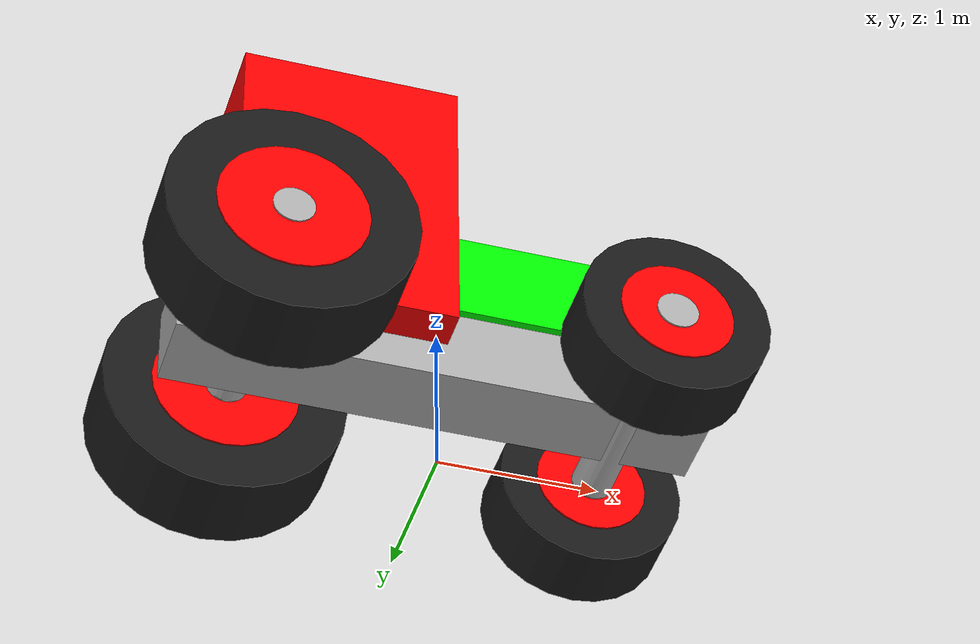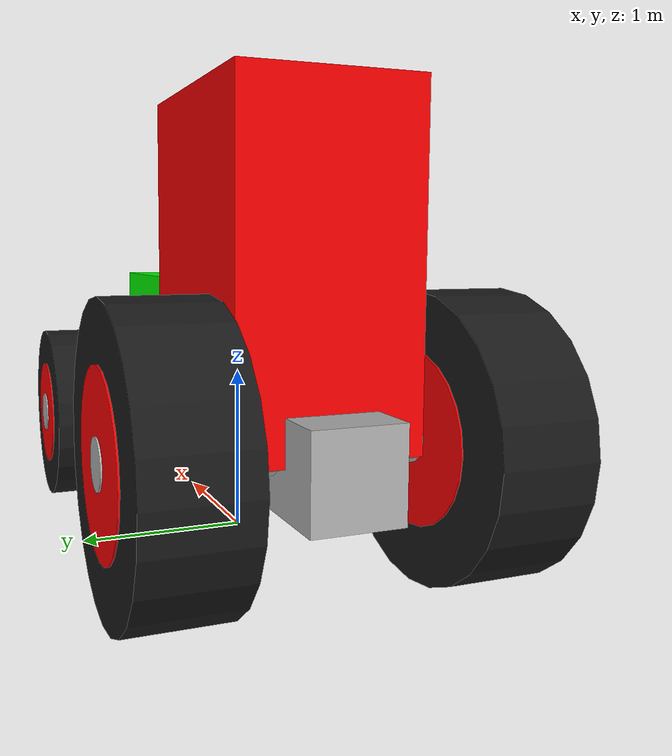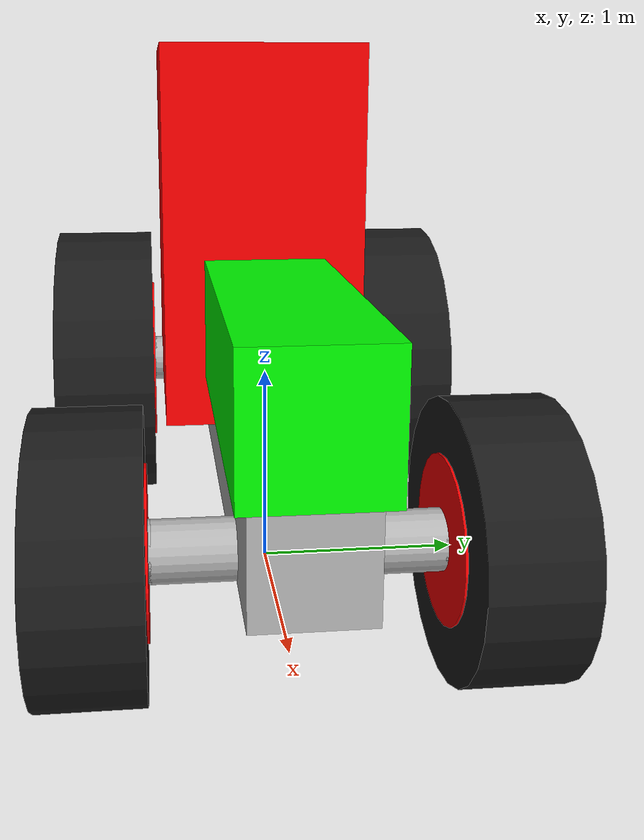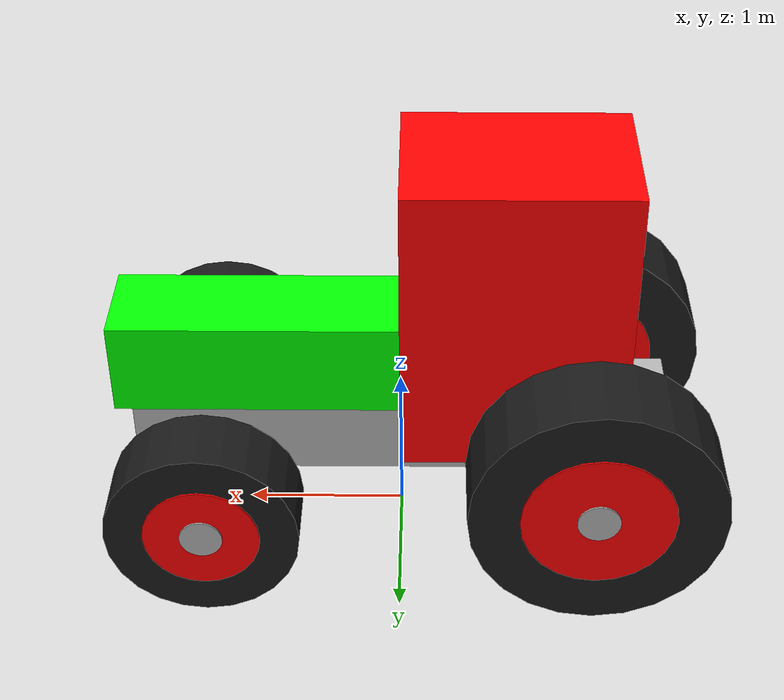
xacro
<?xml version="1.0"?>
<robot name="fendt" xmlns:xacro="http://www.ros.org/wiki/xacro">

    <xacro:include filename="$(find robot_description)/urdf/fendt/common_properties.xacro"/>
    <xacro:include filename="$(find robot_description)/urdf/fendt/wheels.xacro"/>

    <material name="grey"><color rgba="0.7 0.7 0.7 1.0"/></material>
    <material name="black"><color rgba="0.1 0.1 0.1 1.0"/></material>
    <material name="green"><color rgba="0.0 1.0 0.0 1.0"/></material>
    <material name="red"><color rgba="1.0 0.0 0.0 1.0"/></material>

    <!-- ===== Dimensions ===== -->
    <xacro:property name="full_length" value="4.119"/>
    <xacro:property name="full_width" value="2.186"/>
    <xacro:property name="full_height" value="2.620"/>
    <xacro:property name="wheelbase" value="2.370"/>
    <xacro:property name="wheel_track" value="1.660"/>
    <xacro:property name="bottom_clearance" value="0.475"/>
    <xacro:property name="half_wheelbase" value="${wheelbase/2.0}"/>
    <xacro:property name="wheel_y_distance" value="${wheel_track/2.0}"/>

    <xacro:property name="wheel_rad_front" value="0.59"/>
    <xacro:property name="wheel_width_f" value="0.44"/>
    <xacro:property name="front_steer_limit" value="0.6108652382"/>
    <xacro:property name="axle_rad_front" value="0.13"/>
    <xacro:property name="axle_len_front" value="${wheel_track-wheel_width_f}"/>

    <xacro:property name="wheel_rad_rear" value="0.78"/>
    <xacro:property name="wheel_width_r" value="0.54"/>
    <xacro:property name="axle_rad_rear" value="0.13"/>
    <xacro:property name="axle_len_rear" value="${wheel_track-wheel_width_r}"/>

    <xacro:property name="box_len_chassis" value="${wheelbase + 2*wheel_rad_front - 0.20}"/>
    <xacro:property name="box_width_chassis" value="0.50"/>
    <xacro:property name="box_height_chassis" value="0.50"/>

    <xacro:property name="axle_to_front_f_body" value="${wheel_rad_front}"/>
    <xacro:property name="box_len_f_body" value="${axle_to_front_f_body + half_wheelbase}"/>
    <xacro:property name="box_width_f_body" value="0.60"/>
    <xacro:property name="box_height_f_body" value="0.60"/>

    <xacro:property name="axle_to_r_body" value="0.20"/>
    <xacro:property name="box_len_r_body" value="${axle_to_r_body + half_wheelbase}"/>
    <xacro:property name="box_width_r_body" value="${full_width-2*wheel_width_r-0.10}"/>
    <xacro:property name="box_height_r_body" value="${full_height-bottom_clearance - chassis_origin_z}"/>

    <xacro:property name="weight_f_body" value="150"/>
    <xacro:property name="weight_r_body" value="250"/>
    <xacro:property name="weight_chassis" value="3000"/>
    <xacro:property name="wheel_weight_f" value="100"/>
    <xacro:property name="weight_f_axle" value="100"/>
    <xacro:property name="wheel_weight_r" value="150"/>
    <xacro:property name="weight_r_axle" value="150"/>
    <xacro:property name="total_weight" value="${weight_f_body+weight_r_body+weight_chassis+2*(wheel_weight_f + wheel_weight_r)}"/>

    <xacro:property name="base_link_origin_z" value="${bottom_clearance}"/>
    <xacro:property name="chassis_origin_z" value="${box_height_chassis/2.0}"/>

    <xacro:property name="rear_axle_origin_x" value="${-half_wheelbase}"/>
    <xacro:property name="rear_axle_origin_z" value="${wheel_rad_rear - (bottom_clearance+chassis_origin_z)}"/>

    <xacro:property name="front_axle_origin_x" value="${half_wheelbase}"/>
    <xacro:property name="front_axle_origin_z" value="${wheel_rad_front - (bottom_clearance+chassis_origin_z)}"/>

    <xacro:property name="rear_body_origin_x" value="${-box_len_r_body/2.0}"/>
    <xacro:property name="rear_body_origin_z" value="${box_height_r_body/2.0}"/>

    <xacro:property name="front_body_origin_x" value="${box_len_f_body/2.0}"/>
    <xacro:property name="front_body_origin_z" value="${box_height_f_body/2.0 + chassis_origin_z}"/>

    <xacro:property name="laser_origin_z" value="${full_height - bottom_clearance + 0.15}"/>
    <xacro:property name="gnss_origin_z" value="${full_height - bottom_clearance}"/>

    <link name="base_footprint"/>

    <link name="base_link"/>
    <joint name="base_link_joint" type="fixed">
        <parent link="base_footprint"/>
        <child link="base_link"/>
        <origin xyz="0 0 ${base_link_origin_z}" rpy="0 0 0"/>
    </joint>

    <link name="chassis">
        <visual>
            <origin xyz="0 0 0"/>
            <geometry><box size="${box_len_chassis} ${box_width_chassis} ${box_height_chassis}"/></geometry>
            <material name="grey"/>
        </visual>
        <collision>
            <origin xyz="0 0 0"/>
            <geometry><box size="${box_len_chassis} ${box_width_chassis} ${box_height_chassis}"/></geometry>
        </collision>
        <xacro:box_inertia
                m="${weight_chassis}"
                x="${box_len_chassis}"
                y="${box_width_chassis}"
                z="${box_height_chassis}"
                o_xyz="0 0 0"
                o_rpy="0 0 0"/>
    </link>

    <joint name="base_to_chassis_joint" type="fixed">
        <parent link="base_link"/>
        <child link="chassis"/>
        <origin xyz="0 0 ${chassis_origin_z}" rpy="0 0 0"/>
    </joint>

    <joint name="base_to_rear_joint" type="fixed">
        <parent link="chassis"/>
        <child link="rear_body"/>
        <origin xyz="0 0 0" rpy="0 0 0"/>
    </joint>

    <link name="rear_body">
        <visual>
            <origin xyz="${rear_body_origin_x} 0 ${rear_body_origin_z}"/>
            <geometry><box size="${box_len_r_body} ${box_width_r_body} ${box_height_r_body}"/></geometry>
            <material name="red"/>
        </visual>

        <collision>
            <origin xyz="${rear_body_origin_x} 0 ${rear_body_origin_z}"/>
            <geometry><box size="${box_len_r_body} ${box_width_r_body} ${box_height_r_body}"/></geometry>
        </collision>

        <xacro:box_inertia
                m="${weight_r_body}"
                x="${box_len_r_body}"
                y="${box_width_r_body}"
                z="${box_height_r_body}"
                o_xyz="${rear_body_origin_x} 0 ${rear_body_origin_z}"
                o_rpy="0 0 0"/>
    </link>

    <link name="front_body">
        <visual>
            <origin xyz="${front_body_origin_x} 0 ${front_body_origin_z}"/>
            <geometry><box size="${box_len_f_body} ${box_width_f_body} ${box_height_f_body}"/></geometry>
            <material name="green"/>
        </visual>

        <collision>
            <origin xyz="${front_body_origin_x} 0 ${front_body_origin_z}"/>
            <geometry><box size="${box_len_f_body} ${box_width_f_body} ${box_height_f_body}"/></geometry>
        </collision>

        <xacro:box_inertia
                m="${weight_f_body}"
                x="${box_len_f_body}"
                y="${box_width_f_body}"
                z="${box_height_f_body}"
                o_xyz="${front_body_origin_x} 0 ${front_body_origin_z}"
                o_rpy="0 0 0"/>
    </link>

    <joint name="base_to_front_joint" type="fixed">
        <parent link="chassis"/>
        <child link="front_body"/>
        <origin xyz="0 0 0" rpy="0 0 0"/>
    </joint>

    <link name="rear_axle">
        <visual>
            <origin xyz="0 0 0" rpy="1.57079632679 0 0"/>
            <geometry><cylinder radius="${axle_rad_rear}" length="${axle_len_rear}"/></geometry>
            <material name="grey"/>
        </visual>
        <collision>
            <origin xyz="0 0 0" rpy="1.57079632679 0 0"/>
            <geometry><cylinder radius="${axle_rad_rear}" length="${axle_len_rear}"/></geometry>
        </collision>
        <xacro:cylinder_inertia
                m="${weight_r_axle}"
                r="${axle_rad_rear}"
                l="${axle_len_rear}"
                o_xyz="0 0 0"
                o_rpy="0 0 0"/>
    </link>

    <joint name="rear_axle_joint" type="fixed">
        <parent link="chassis"/>
        <child link="rear_axle"/>
        <origin xyz="${rear_axle_origin_x} 0 ${rear_axle_origin_z}" rpy="0 0 0"/>
    </joint>

    <link name="front_axle">
        <visual>
            <origin xyz="0 0 0" rpy="1.57079632679 0 0"/>
            <geometry><cylinder radius="${axle_rad_front}" length="${axle_len_front}"/></geometry>
            <material name="grey"/>
        </visual>
        <collision>
            <origin xyz="0 0 0" rpy="1.57079632679 0 0"/>
            <geometry><cylinder radius="${axle_rad_front}" length="${axle_len_front}"/></geometry>
        </collision>
        <xacro:cylinder_inertia
                m="${weight_f_axle}"
                r="${axle_rad_front}"
                l="${axle_len_front}"
                o_xyz="0 0 0"
                o_rpy="0 0 0"/>
    </link>

    <joint name="front_axle_roll_joint" type="fixed">
        <parent link="chassis"/>
        <child link="front_axle"/>
        <origin xyz="${front_axle_origin_x} 0 ${front_axle_origin_z}" rpy="0 0 0"/>
        <axis xyz="1 0 0"/>
        <limit lower="-0.1745329252" upper="0.1745329252" effort="3000.0" velocity="0.5"/>
        <dynamics damping="80.0" friction="8.0"/>
    </joint>

    <!-- ===== Wheels ===== -->
    <xacro:wheel name="rear_left_wheel"  parent="rear_axle"  x="0.0" y="${wheel_y_distance - (wheel_width_r/2.0)}" z="0.0" radius="${wheel_rad_rear}" width="${wheel_width_r}" mass="${wheel_weight_r}" axle_radius="${axle_rad_rear}" pivot_y_offset="${wheel_width_r/2.0}"/>
    <xacro:wheel name="rear_right_wheel" parent="rear_axle"  x="0.0" y="${-wheel_y_distance + (wheel_width_r/2.0)}" z="0.0" radius="${wheel_rad_rear}" width="${wheel_width_r}" mass="${wheel_weight_r}" axle_radius="${axle_rad_rear}" pivot_y_offset="${-wheel_width_r/2.0}"/>

    <xacro:steerable_wheel name="front_left_wheel"  parent="front_axle" x="0.0" y="${wheel_y_distance - (wheel_width_f/2.0)}" z="0.0" radius="${wheel_rad_front}" width="${wheel_width_f}" mass="${wheel_weight_f}" steer_limit="${front_steer_limit}" axle_radius="${axle_rad_front}" pivot_y_offset="${wheel_width_f/2.0}"/>
    <xacro:steerable_wheel name="front_right_wheel" parent="front_axle" x="0.0" y="${-wheel_y_distance + (wheel_width_f/2.0)}" z="0.0" radius="${wheel_rad_front}" width="${wheel_width_f}" mass="${wheel_weight_f}" steer_limit="${front_steer_limit}" axle_radius="${axle_rad_front}" pivot_y_offset="${-wheel_width_f/2.0}"/>

    <!-- ===== Sensors ===== -->
    <link name="laser_frame"/>
    <joint name="laser_joint" type="fixed">
        <parent link="base_link"/>
        <child link="laser_frame"/>
        <origin xyz="0.0 0.0 ${laser_origin_z}" rpy="0 0 0"/>
    </joint>

    <link name="imu_link"/>
    <joint name="imu_joint" type="fixed">
        <parent link="base_link"/>
        <child link="imu_link"/>
        <origin xyz="0 0 0" rpy="0 0 0"/>
    </joint>

    <link name="gnss_link"/>
    <joint name="gnss_joint" type="fixed">
        <parent link="base_link"/>
        <child link="gnss_link"/>
        <origin xyz="0.0 0.0 ${gnss_origin_z}" rpy="0 0 0"/>
    </joint>

</robot>

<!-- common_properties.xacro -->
<robot xmlns:xacro="http://www.ros.org/wiki/xacro">

    <!-- Inertia calculation macros -->

    <xacro:macro name="box_inertia" params="m x y z o_xyz o_rpy">
        <inertial>
            <mass value="${m}" />
            <origin xyz="${o_xyz}" rpy="${o_rpy}" />
            <inertia ixx="${(m/12) * (y*y + z*z)}" ixy="0" ixz="0"
                     iyy="${(m/12) * (x*x + z*z)}" iyz="0"
                     izz="${(m/12) * (x*x + y*y)}" />
        </inertial>
    </xacro:macro>

    <xacro:macro name="cylinder_inertia" params="m r l o_xyz o_rpy">
        <inertial>
            <mass value="${m}" />
            <origin xyz="${o_xyz}" rpy="${o_rpy}" />
            <inertia ixx="${(m/12) * (3*r*r + l*l)}" ixy="0" ixz="0"
                     iyy="${(m/12) * (3*r*r + l*l)}" iyz="0"
                     izz="${(m/2) * (r*r)}" />
        </inertial>
    </xacro:macro>

    <xacro:macro name="sphere_inertia" params="m r o_xyz o_rpy">
        <inertial>
            <mass value="${m}" />
            <origin xyz="${o_xyz}" rpy="${o_rpy}" />
            <inertia ixx="${(2/5) * m * r * r}" ixy="0" ixz="0"
                     iyy="${(2/5) * m * r * r}" iyz="0"
                     izz="${(2/5) * m * r * r}" />
        </inertial>
    </xacro:macro>

</robot>

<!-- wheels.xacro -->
<robot xmlns:xacro="http://www.ros.org/wiki/xacro">

  <!-- ===== Rear Wheel Macro (axle -> knuckle -> hub -> tire) ===== -->
  <xacro:macro name="wheel" params="name parent x y z radius width mass:=50.0 axle_radius:=0.13 pivot_y_offset:=0.0">
    <xacro:property name="knuckle_length" value="${width + 0.04}"/>
    <xacro:property name="hub_radius" value="${0.6 * radius}"/>
    <xacro:property name="hub_length" value="${width + 0.02}"/>

    <link name="${name}_knuckle">
      <visual>
        <origin xyz="0 ${pivot_y_offset} 0" rpy="1.57079632679 0 0"/>
        <geometry>
          <cylinder radius="${axle_radius}" length="${knuckle_length}"/>
        </geometry>
        <material name="grey"/>
      </visual>
      <collision>
        <origin xyz="0 ${pivot_y_offset} 0" rpy="1.57079632679 0 0"/>
        <geometry>
          <cylinder radius="${axle_radius}" length="${knuckle_length}"/>
        </geometry>
      </collision>
      <xacro:cylinder_inertia m="${0.1 * mass}"
                              r="${axle_radius}"
                              l="${knuckle_length}"
                              o_xyz="0 ${pivot_y_offset} 0"
                              o_rpy="0 0 0"/>
    </link>

    <joint name="${name}_knuckle_joint" type="fixed">
      <parent link="${parent}"/>
      <child link="${name}_knuckle"/>
      <origin xyz="${x} ${y} ${z}" rpy="0 0 0"/>
    </joint>

    <link name="${name}_hub">
      <visual>
        <origin xyz="0 0 0" rpy="1.57079632679 0 0"/>
        <geometry>
          <cylinder radius="${hub_radius}" length="${hub_length}"/>
        </geometry>
        <material name="red"/>
      </visual>
      <collision>
        <origin xyz="0 0 0" rpy="1.57079632679 0 0"/>
        <geometry>
          <cylinder radius="${hub_radius}" length="${hub_length}"/>
        </geometry>
      </collision>
      <xacro:cylinder_inertia m="${0.2 * mass}"
                              r="${hub_radius}"
                              l="${hub_length}"
                              o_xyz="0 0 0"
                              o_rpy="0 0 0"/>
    </link>

    <joint name="${name}_joint" type="continuous">
      <parent link="${name}_knuckle"/>
      <child link="${name}_hub"/>
      <origin xyz="0 ${pivot_y_offset} 0" rpy="0 0 0"/>
      <axis xyz="0 1 0"/>
      <dynamics damping="3.0" friction="0.4"/>
    </joint>

    <link name="${name}">
      <visual>
        <origin xyz="0 0 0" rpy="1.57079632679 0 0"/>
        <geometry>
          <cylinder radius="${radius}" length="${width}"/>
        </geometry>
        <material name="black"/>
      </visual>
      <collision>
        <origin xyz="0 0 0" rpy="1.57079632679 0 0"/>
        <geometry>
          <cylinder radius="${radius}" length="${width}"/>
        </geometry>
      </collision>
      <xacro:cylinder_inertia m="${0.7 * mass}"
                              r="${radius}"
                              l="${width}"
                              o_xyz="0 0 0"
                              o_rpy="0 0 0"/>
    </link>

    <joint name="${name}_tire_joint" type="fixed">
      <parent link="${name}_hub"/>
      <child link="${name}"/>
      <origin xyz="0 0 0" rpy="0 0 0"/>
    </joint>
  </xacro:macro>

  <xacro:macro name="steerable_wheel" params="name parent x y z radius width mass:=50.0 steer_limit:=0.9599310886 mimic_joint:='' mimic_multiplier:=1.0 axle_radius:=0.13 pivot_y_offset:=0.0">
    <xacro:property name="knuckle_length" value="${width + 0.04}"/>
    <xacro:property name="hub_radius" value="${0.6 * radius}"/>
    <xacro:property name="hub_length" value="${width + 0.02}"/>

    <link name="${name}_knuckle">
      <visual>
        <origin xyz="0 ${pivot_y_offset} 0" rpy="1.57079632679 0 0"/>
        <geometry>
          <cylinder radius="${axle_radius}" length="${knuckle_length}"/>
        </geometry>
        <material name="grey"/>
      </visual>
      <collision>
        <origin xyz="0 ${pivot_y_offset} 0" rpy="1.57079632679 0 0"/>
        <geometry>
          <cylinder radius="${axle_radius}" length="${knuckle_length}"/>
        </geometry>
      </collision>
      <xacro:cylinder_inertia m="${0.1 * mass}"
                              r="${axle_radius}"
                              l="${knuckle_length}"
                              o_xyz="0 ${pivot_y_offset} 0"
                              o_rpy="0 0 0"/>
    </link>

    <joint name="${name}_steer_joint" type="revolute">
      <parent link="${parent}"/>
      <child link="${name}_knuckle"/>
      <origin xyz="${x} ${y} ${z}" rpy="0 0 0"/>
      <axis xyz="0 0 1"/>
      <limit lower="${-steer_limit}" upper="${steer_limit}" effort="2000.0" velocity="1.5"/>
      <xacro:if value="${mimic_joint != ''}">
        <mimic joint="${mimic_joint}" multiplier="${mimic_multiplier}" offset="0.0"/>
      </xacro:if>
      <dynamics damping="70.0" friction="5.0"/>
    </joint>

    <link name="${name}_hub">
      <visual>
        <origin xyz="0 0 0" rpy="1.57079632679 0 0"/>
        <geometry>
          <cylinder radius="${hub_radius}" length="${hub_length}"/>
        </geometry>
        <material name="red"/>
      </visual>
      <collision>
        <origin xyz="0 0 0" rpy="1.57079632679 0 0"/>
        <geometry>
          <cylinder radius="${hub_radius}" length="${hub_length}"/>
        </geometry>
      </collision>
      <xacro:cylinder_inertia m="${0.2 * mass}"
                              r="${hub_radius}"
                              l="${hub_length}"
                              o_xyz="0 0 0"
                              o_rpy="0 0 0"/>
    </link>

    <joint name="${name}_joint" type="continuous">
      <parent link="${name}_knuckle"/>
      <child link="${name}_hub"/>
      <origin xyz="0 ${pivot_y_offset} 0" rpy="0 0 0"/>
      <axis xyz="0 1 0"/>
      <dynamics damping="2.8" friction="0.35"/>
    </joint>

    <link name="${name}">
      <visual>
        <origin xyz="0 0 0" rpy="1.57079632679 0 0"/>
        <geometry>
          <cylinder radius="${radius}" length="${width}"/>
        </geometry>
        <material name="black"/>
      </visual>
      <collision>
        <origin xyz="0 0 0" rpy="1.57079632679 0 0"/>
        <geometry>
          <cylinder radius="${radius}" length="${width}"/>
        </geometry>
      </collision>
      <xacro:cylinder_inertia m="${0.7 * mass}"
                              r="${radius}"
                              l="${width}"
                              o_xyz="0 0 0"
                              o_rpy="0 0 0"/>
    </link>

    <joint name="${name}_tire_joint" type="fixed">
      <parent link="${name}_hub"/>
      <child link="${name}"/>
      <origin xyz="0 0 0" rpy="0 0 0"/>
    </joint>
  </xacro:macro>

</robot>
